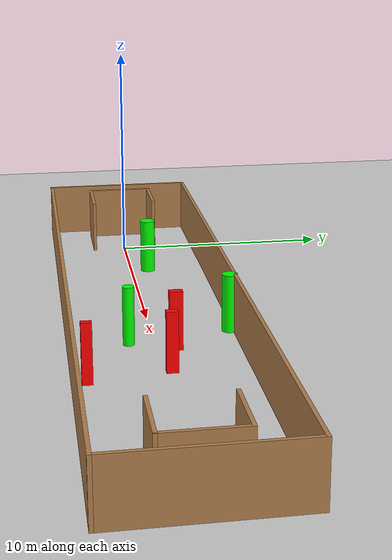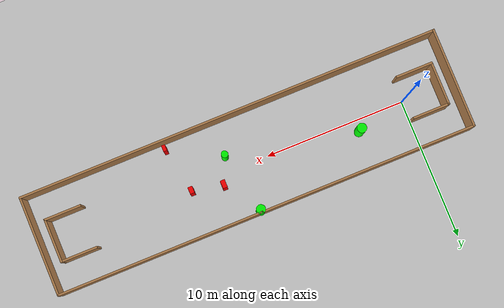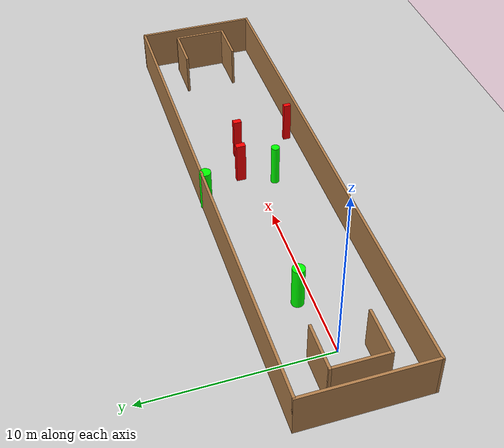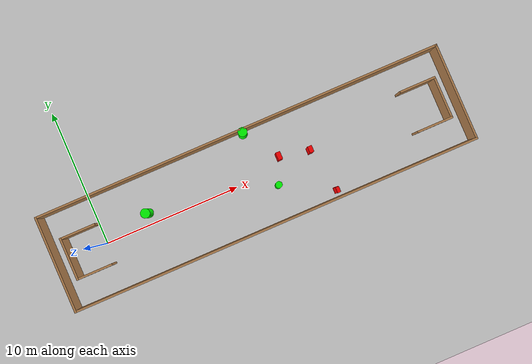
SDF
<sdf version="1.7">
 <world name="default">
  <light name="sun" type="directional">
   <pose>0 0 10 0 -0 0</pose>
   <diffuse>0.8 0.8 0.8 1</diffuse>
   <specular>0.2 0.2 0.2 1</specular>
   <attenuation>
    <range>1000</range>
    <constant>0.9</constant>
    <linear>0.01</linear>
    <quadratic>0.001</quadratic>
   </attenuation>
   <direction>-0.5 0.1 -0.9</direction>
   <spot><inner_angle>0</inner_angle><outer_angle>0</outer_angle><falloff>0</falloff></spot>
  </light>
  <model name="ground_plane">
   <static>1</static>
   <link name="link">
    <collision name="collision">
     <geometry><plane><normal>0 0 1</normal><size>100 100</size></plane></geometry>
     <surface>
      <contact><collide_bitmask>65535</collide_bitmask></contact>
      <friction><ode><mu>100</mu><mu2>50</mu2></ode></friction>
     </surface>
    </collision>
    <visual name="visual">
     <cast_shadows>0</cast_shadows>
     <geometry><plane><normal>0 0 1</normal><size>100 100</size></plane></geometry>
     <material>
      <script><uri>file://media/materials/scripts/gazebo.material</uri><name>Gazebo/Grey</name></script>
     </material>
    </visual>
   </link>
  </model>
  <gravity>0 0 -9.8</gravity>
  <magnetic_field>6e-06 2.3e-05 -4.2e-05</magnetic_field>
  <atmosphere type="adiabatic"/>
  <physics type="ode">
   <max_step_size>0.001</max_step_size>
   <real_time_factor>1</real_time_factor>
   <real_time_update_rate>1000</real_time_update_rate>
  </physics>
  <scene><ambient>0.4 0.4 0.4 1</ambient><background>0.7 0.7 0.7 1</background><shadows>1</shadows></scene>
  <spherical_coordinates>
   <surface_model>EARTH_WGS84</surface_model>
   <latitude_deg>0</latitude_deg>
   <longitude_deg>0</longitude_deg>
   <elevation>0</elevation>
   <heading_deg>0</heading_deg>
  </spherical_coordinates>
  <model name="my_base_walls">
   <link name="Wall_0">
    <collision name="Wall_0_Collision">
     <geometry><box><size>7.15 0.15 2.5</size></box></geometry>
     <pose>0 0 1.25 0 -0 0</pose>
    </collision>
    <visual name="Wall_0_Visual">
     <pose>0 0 1.25 0 -0 0</pose>
     <geometry><box><size>7.15 0.15 2.5</size></box></geometry>
     <material>
      <script><uri>file://media/materials/scripts/gazebo.material</uri><name>Gazebo/Wood</name></script>
      <ambient>1 1 1 1</ambient>
     </material>
     <meta><layer>0</layer></meta>
    </visual>
    <pose>-15 0 0 0 -0 1.5708</pose>
   </link>
   <link name="Wall_10">
    <collision name="Wall_10_Collision">
     <geometry><box><size>2.65 0.15 2.5</size></box></geometry>
     <pose>0 0 1.25 0 -0 0</pose>
    </collision>
    <visual name="Wall_10_Visual">
     <pose>0 0 1.25 0 -0 0</pose>
     <geometry><box><size>2.65 0.15 2.5</size></box></geometry>
     <material>
      <script><uri>file://media/materials/scripts/gazebo.material</uri><name>Gazebo/Wood</name></script>
      <ambient>1 1 1 1</ambient>
     </material>
     <meta><layer>0</layer></meta>
    </visual>
    <pose>-12.75 -1.5 0 0 -0 0</pose>
   </link>
   <link name="Wall_12">
    <collision name="Wall_12_Collision">
     <geometry><box><size>2.65 0.15 2.5</size></box></geometry>
     <pose>0 0 1.25 0 -0 0</pose>
    </collision>
    <visual name="Wall_12_Visual">
     <pose>0 0 1.25 0 -0 0</pose>
     <geometry><box><size>2.65 0.15 2.5</size></box></geometry>
     <material>
      <script><uri>file://media/materials/scripts/gazebo.material</uri><name>Gazebo/Wood</name></script>
      <ambient>1 1 1 1</ambient>
     </material>
     <meta><layer>0</layer></meta>
    </visual>
    <pose>-12.75 1.5 0 0 -0 0</pose>
   </link>
   <link name="Wall_14">
    <collision name="Wall_14_Collision">
     <geometry><box><size>3.15 0.15 2.5</size></box></geometry>
     <pose>0 0 1.25 0 -0 0</pose>
    </collision>
    <visual name="Wall_14_Visual">
     <pose>0 0 1.25 0 -0 0</pose>
     <geometry><box><size>3.15 0.15 2.5</size></box></geometry>
     <material>
      <script><uri>file://media/materials/scripts/gazebo.material</uri><name>Gazebo/Wood</name></script>
      <ambient>1 1 1 1</ambient>
     </material>
     <meta><layer>0</layer></meta>
    </visual>
    <pose>14 0 0 0 -0 -1.5708</pose>
   </link>
   <link name="Wall_15">
    <collision name="Wall_15_Collision">
     <geometry><box><size>2.65 0.15 2.5</size></box></geometry>
     <pose>0 0 1.25 0 -0 0</pose>
    </collision>
    <visual name="Wall_15_Visual">
     <pose>0 0 1.25 0 -0 0</pose>
     <geometry><box><size>2.65 0.15 2.5</size></box></geometry>
     <material>
      <script><uri>file://media/materials/scripts/gazebo.material</uri><name>Gazebo/Wood</name></script>
      <ambient>1 1 1 1</ambient>
     </material>
     <meta><layer>0</layer></meta>
    </visual>
    <pose>12.75 -1.5 0 0 -0 3.14159</pose>
   </link>
   <link name="Wall_17">
    <collision name="Wall_17_Collision">
     <geometry><box><size>2.65 0.15 2.5</size></box></geometry>
     <pose>0 0 1.25 0 -0 0</pose>
    </collision>
    <visual name="Wall_17_Visual">
     <pose>0 0 1.25 0 -0 0</pose>
     <geometry><box><size>2.65 0.15 2.5</size></box></geometry>
     <material>
      <script><uri>file://media/materials/scripts/gazebo.material</uri><name>Gazebo/Wood</name></script>
      <ambient>1 1 1 1</ambient>
     </material>
     <meta><layer>0</layer></meta>
    </visual>
    <pose>12.75 1.5 0 0 -0 3.14159</pose>
   </link>
   <link name="Wall_2">
    <collision name="Wall_2_Collision">
     <geometry><box><size>30.15 0.15 2.5</size></box></geometry>
     <pose>0 0 1.25 0 -0 0</pose>
    </collision>
    <visual name="Wall_2_Visual">
     <pose>0 0 1.25 0 -0 0</pose>
     <geometry><box><size>30.15 0.15 2.5</size></box></geometry>
     <material>
      <script><uri>file://media/materials/scripts/gazebo.material</uri><name>Gazebo/Wood</name></script>
      <ambient>1 1 1 1</ambient>
     </material>
     <meta><layer>0</layer></meta>
    </visual>
    <pose>-0 -3.5 0 0 -0 0</pose>
   </link>
   <link name="Wall_4">
    <collision name="Wall_4_Collision">
     <geometry><box><size>30.15 0.15 2.5</size></box></geometry>
     <pose>0 0 1.25 0 -0 0</pose>
    </collision>
    <visual name="Wall_4_Visual">
     <pose>0 0 1.25 0 -0 0</pose>
     <geometry><box><size>30.15 0.15 2.5</size></box></geometry>
     <material>
      <script><uri>file://media/materials/scripts/gazebo.material</uri><name>Gazebo/Wood</name></script>
      <ambient>1 1 1 1</ambient>
     </material>
     <meta><layer>0</layer></meta>
    </visual>
    <pose>-0 3.5 0 0 -0 0</pose>
   </link>
   <link name="Wall_6">
    <collision name="Wall_6_Collision">
     <geometry><box><size>7.15 0.15 2.5</size></box></geometry>
     <pose>0 0 1.25 0 -0 0</pose>
    </collision>
    <visual name="Wall_6_Visual">
     <pose>0 0 1.25 0 -0 0</pose>
     <geometry><box><size>7.15 0.15 2.5</size></box></geometry>
     <material>
      <script><uri>file://media/materials/scripts/gazebo.material</uri><name>Gazebo/Wood</name></script>
      <ambient>1 1 1 1</ambient>
     </material>
     <meta><layer>0</layer></meta>
    </visual>
    <pose>15 0 0 0 -0 -1.5708</pose>
   </link>
   <link name="Wall_9">
    <collision name="Wall_9_Collision">
     <geometry><box><size>3.15 0.15 2.5</size></box></geometry>
     <pose>0 0 1.25 0 -0 0</pose>
    </collision>
    <visual name="Wall_9_Visual">
     <pose>0 0 1.25 0 -0 0</pose>
     <geometry><box><size>3.15 0.15 2.5</size></box></geometry>
     <material>
      <script><uri>file://media/materials/scripts/gazebo.material</uri><name>Gazebo/Wood</name></script>
      <ambient>1 1 1 1</ambient>
     </material>
     <meta><layer>0</layer></meta>
    </visual>
    <pose>-14 0 0 0 -0 -1.5708</pose>
   </link>
   <static>1</static>
   <pose>11.5 0 0 0 -0 0</pose>
  </model>
  <model name="cylinder1">
   <static>1</static>
   <link name="link">
    <inertial>
     <mass>1</mass>
     <inertia><ixx>0.5</ixx><ixy>0</ixy><ixz>0</ixz><iyy>0.5</iyy><iyz>0</iyz><izz>1</izz></inertia>
    </inertial>
    <collision name="collision">
     <geometry><cylinder><radius>0.34041654288389844</radius><length>2.5</length></cylinder></geometry>
    </collision>
    <visual name="visual">
     <geometry><cylinder><radius>0.34041654288389844</radius><length>2.5</length></cylinder></geometry>
     <material>
      <ambient>0 1 0 1</ambient>
      <diffuse>0 1 0 1</diffuse>
      <specular>0.1 0.1 0.1 1</specular>
      <emissive>0 0 0 0</emissive>
     </material>
    </visual>
   </link>
   <pose>3.5377424560908075 0.8056057507825454 1.25 0 0 0</pose>
  </model>
  <model name="cylinder2">
   <static>1</static>
   <link name="link">
    <inertial>
     <mass>1</mass>
     <inertia><ixx>0.5</ixx><ixy>0</ixy><ixz>0</ixz><iyy>0.5</iyy><iyz>0</iyz><izz>1</izz></inertia>
    </inertial>
    <collision name="collision">
     <geometry><cylinder><radius>0.24147510612619563</radius><length>2.5</length></cylinder></geometry>
    </collision>
    <visual name="visual">
     <geometry><cylinder><radius>0.24147510612619563</radius><length>2.5</length></cylinder></geometry>
     <material>
      <ambient>0 1 0 1</ambient>
      <diffuse>0 1 0 1</diffuse>
      <specular>0.1 0.1 0.1 1</specular>
      <emissive>0 0 0 0</emissive>
     </material>
    </visual>
   </link>
   <pose>12.744039804250999 -1.03797499697989 1.25 0 0 0</pose>
  </model>
  <model name="cylinder3">
   <static>1</static>
   <link name="link">
    <inertial>
     <mass>1</mass>
     <inertia><ixx>0.5</ixx><ixy>0</ixy><ixz>0</ixz><iyy>0.5</iyy><iyz>0</iyz><izz>1</izz></inertia>
    </inertial>
    <collision name="collision">
     <geometry><cylinder><radius>0.3279739745389008</radius><length>2.5</length></cylinder></geometry>
    </collision>
    <visual name="visual">
     <geometry><cylinder><radius>0.3279739745389008</radius><length>2.5</length></cylinder></geometry>
     <material>
      <ambient>0 1 0 1</ambient>
      <diffuse>0 1 0 1</diffuse>
      <specular>0.1 0.1 0.1 1</specular>
      <emissive>0 0 0 0</emissive>
     </material>
    </visual>
   </link>
   <pose>11.882051989855723 3.2952963251840215 1.25 0 0 0</pose>
  </model>
  <model name="box1">
   <static>1</static>
   <link name="link">
    <inertial>
     <mass>1</mass>
     <inertia><ixx>0.083</ixx><ixy>0</ixy><ixz>0</ixz><iyy>0.083</iyy><iyz>0</iyz><izz>0.083</izz></inertia>
    </inertial>
    <collision name="collision">
     <geometry><box><size>0.3132316568554453 0.4712938436547477 2.5</size></box></geometry>
    </collision>
    <visual name="visual">
     <geometry><box><size>0.3132316568554453 0.4712938436547477 2.5</size></box></geometry>
     <material>
      <ambient>1 0 0 1</ambient>
      <diffuse>1 0 0 1</diffuse>
      <specular>0.1 0.1 0.1 1</specular>
      <emissive>0 0 0 0</emissive>
     </material>
    </visual>
    <sensor name="my_contact" type="contact">
     <contact><collision>box_collision</collision><topic>__default_topic__</topic></contact>
    </sensor>
   </link>
   <pose>15.720867021237488 0.3452429592149491 1.25 0 0 0</pose>
  </model>
  <model name="box2">
   <static>1</static>
   <link name="link">
    <inertial>
     <mass>1</mass>
     <inertia><ixx>0.083</ixx><ixy>0</ixy><ixz>0</ixz><iyy>0.083</iyy><iyz>0</iyz><izz>0.083</izz></inertia>
    </inertial>
    <collision name="collision">
     <geometry><box><size>0.25015877367975314 0.4239500111102236 2.5</size></box></geometry>
    </collision>
    <visual name="visual">
     <geometry><box><size>0.25015877367975314 0.4239500111102236 2.5</size></box></geometry>
     <material>
      <ambient>1 0 0 1</ambient>
      <diffuse>1 0 0 1</diffuse>
      <specular>0.1 0.1 0.1 1</specular>
      <emissive>0 0 0 0</emissive>
     </material>
    </visual>
    <sensor name="my_contact" type="contact">
     <contact><collision>box_collision</collision><topic>__default_topic__</topic></contact>
    </sensor>
   </link>
   <pose>16.345384860136072 -2.953834062306906 1.25 0 0 0</pose>
  </model>
  <model name="box3">
   <static>1</static>
   <link name="link">
    <inertial>
     <mass>1</mass>
     <inertia><ixx>0.083</ixx><ixy>0</ixy><ixz>0</ixz><iyy>0.083</iyy><iyz>0</iyz><izz>0.083</izz></inertia>
    </inertial>
    <collision name="collision">
     <geometry><box><size>0.3269620992385252 0.5503628232937976 2.5</size></box></geometry>
    </collision>
    <visual name="visual">
     <geometry><box><size>0.3269620992385252 0.5503628232937976 2.5</size></box></geometry>
     <material>
      <ambient>1 0 0 1</ambient>
      <diffuse>1 0 0 1</diffuse>
      <specular>0.1 0.1 0.1 1</specular>
      <emissive>0 0 0 0</emissive>
     </material>
    </visual>
    <sensor name="my_contact" type="contact">
     <contact><collision>box_collision</collision><topic>__default_topic__</topic></contact>
    </sensor>
   </link>
   <pose>13.545921385868473 0.7906273928964485 1.25 0 0 0</pose>
  </model>
 </world>
</sdf>
